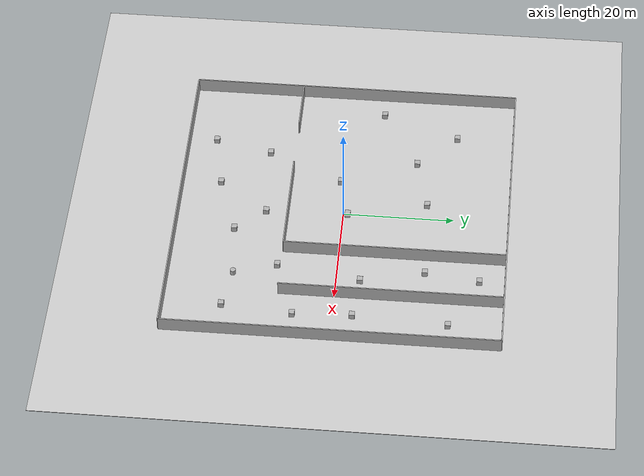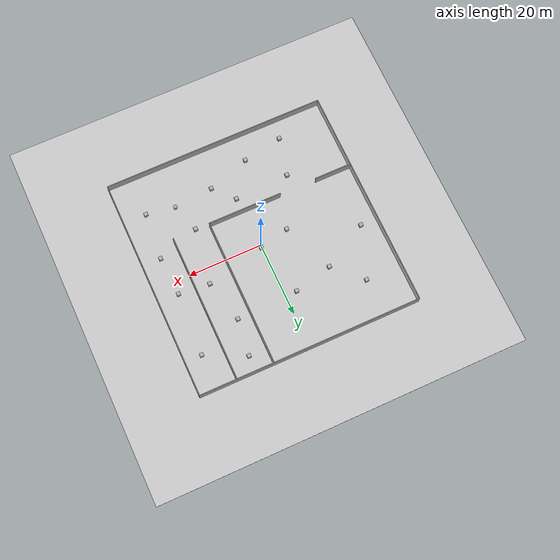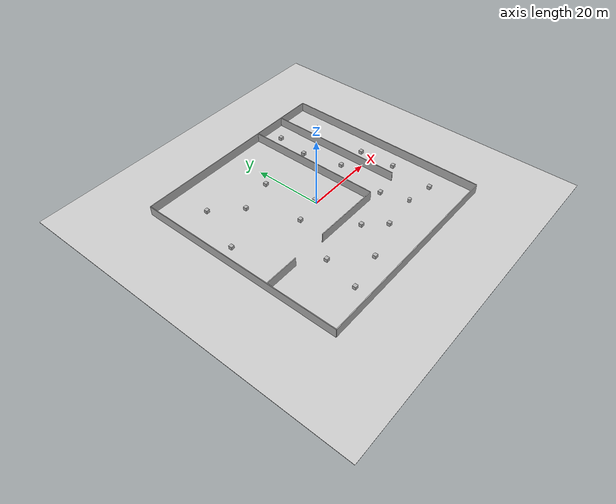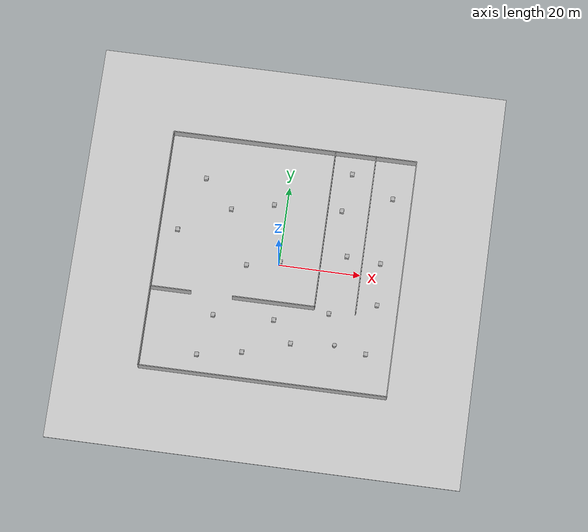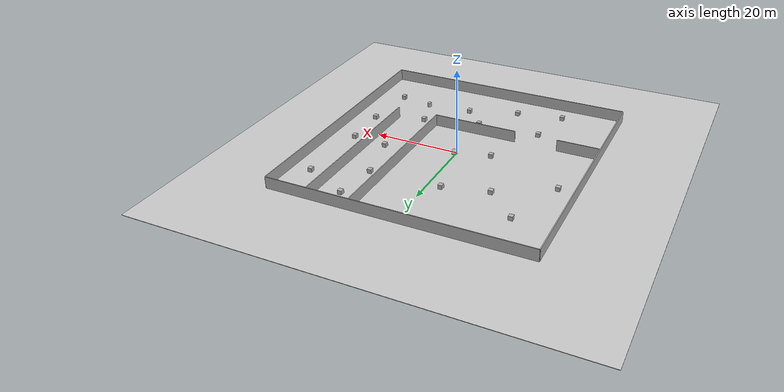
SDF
<sdf version='1.9'>
  <world name='nubot_world'>
    <physics name='1ms' type='ignored'>
      <max_step_size>0.001</max_step_size>
      <real_time_factor>1</real_time_factor>
      <real_time_update_rate>1000</real_time_update_rate>
    </physics>
    <plugin name='ignition::gazebo::systems::Physics' filename='libignition-gazebo-physics-system.so'/>
    <plugin name='ignition::gazebo::systems::Sensors' filename='libignition-gazebo-sensors-system.so'>
      <render_engine>ogre2</render_engine>
    </plugin>
    <plugin name='ignition::gazebo::systems::SceneBroadcaster' filename='libignition-gazebo-scene-broadcaster-system.so'/>
    <plugin name='ignition::gazebo::systems::UserCommands' filename='ignition-gazebo-user-commands-system'/>
    <gravity>0 0 -9.8</gravity>
    <magnetic_field>6e-06 2.3e-05 -4.2e-05</magnetic_field>
    <atmosphere type='adiabatic'/>
    <scene>
      <ambient>0.4 0.4 0.4 1</ambient>
      <background>0.7 0.7 0.7 1</background>
      <shadows>true</shadows>
    </scene>
    <model name='ground_plane'>
      <static>true</static>
      <link name='link'>
        <collision name='collision'>
          <geometry>
            <box>
              <size>100 100 0.1</size>
            </box>
          </geometry>
          <surface>
            <friction>
              <ode/>
            </friction>
            <bounce/>
            <contact/>
          </surface>
        </collision>
        <visual name='visual'>
          <geometry>
            <box>
              <size>100 100 0.1</size>
            </box>
          </geometry>
          <material>
            <ambient>0.8 0.8 0.8 1</ambient>
            <diffuse>0.8 0.8 0.8 1</diffuse>
            <specular>0.8 0.8 0.8 1</specular>
          </material>
        </visual>
        <pose>0 0 0 0 -0 0</pose>
        <inertial>
          <pose>0 0 0 0 -0 0</pose>
          <mass>1</mass>
          <inertia>
            <ixx>1</ixx>
            <ixy>0</ixy>
            <ixz>0</ixz>
            <iyy>1</iyy>
            <iyz>0</iyz>
            <izz>1</izz>
          </inertia>
        </inertial>
        <enable_wind>false</enable_wind>
      </link>
      <pose>0 0 0 0 -0 0</pose>
      <self_collide>false</self_collide>
    </model>
    <model name='outsideS'>
      <pose>30 0 1.4 0 -0 0</pose>
      <link name='box_link'>
        <collision name='box_collision'>
          <geometry>
            <box>
              <size>0.2 60 2.8</size>
            </box>
          </geometry>
          <surface>
            <friction>
              <ode/>
            </friction>
            <bounce/>
            <contact/>
          </surface>
        </collision>
        <visual name='box_visual'>
          <geometry>
            <box>
              <size>0.2 60 2.8</size>
            </box>
          </geometry>
          <material>
            <ambient>0.3 0.3 0.3 1</ambient>
            <diffuse>0.7 0.7 0.7 1</diffuse>
            <specular>1 1 1 1</specular>
          </material>
        </visual>
        <pose>0 0 0 0 -0 0</pose>
        <enable_wind>false</enable_wind>
        <inertial>
          <pose>0 0 0 0 -0 0</pose>
          <mass>1</mass>
          <inertia>
            <ixx>1</ixx>
            <ixy>0</ixy>
            <ixz>0</ixz>
            <iyy>1</iyy>
            <iyz>0</iyz>
            <izz>1</izz>
          </inertia>
        </inertial>
      </link>
      <static>true</static>
      <self_collide>false</self_collide>
    </model>
    <model name='insideS'>
      <pose>20 10 1.4 0 -0 0</pose>
      <link name='box_link'>
        <collision name='box_collision'>
          <geometry>
            <box>
              <size>0.2 40 2.8</size>
            </box>
          </geometry>
          <surface>
            <friction>
              <ode/>
            </friction>
            <bounce/>
            <contact/>
          </surface>
        </collision>
        <visual name='box_visual'>
          <geometry>
            <box>
              <size>0.2 40 2.8</size>
            </box>
          </geometry>
          <material>
            <ambient>0.3 0.3 0.3 1</ambient>
            <diffuse>0.7 0.7 0.7 1</diffuse>
            <specular>1 1 1 1</specular>
          </material>
        </visual>
        <pose>0 0 0 0 -0 0</pose>
        <enable_wind>false</enable_wind>
        <inertial>
          <pose>0 0 0 0 -0 0</pose>
          <mass>1</mass>
          <inertia>
            <ixx>1</ixx>
            <ixy>0</ixy>
            <ixz>0</ixz>
            <iyy>1</iyy>
            <iyz>0</iyz>
            <izz>1</izz>
          </inertia>
        </inertial>
      </link>
      <static>true</static>
      <self_collide>false</self_collide>
    </model>
    <model name='insideS1'>
      <pose>10 10 1.4 0 -0 0</pose>
      <link name='box_link'>
        <collision name='box_collision'>
          <geometry>
            <box>
              <size>0.2 40 2.8</size>
            </box>
          </geometry>
          <surface>
            <friction>
              <ode/>
            </friction>
            <bounce/>
            <contact/>
          </surface>
        </collision>
        <visual name='box_visual'>
          <geometry>
            <box>
              <size>0.2 40 2.8</size>
            </box>
          </geometry>
          <material>
            <ambient>0.3 0.3 0.3 1</ambient>
            <diffuse>0.7 0.7 0.7 1</diffuse>
            <specular>1 1 1 1</specular>
          </material>
        </visual>
        <pose>0 0 0 0 -0 0</pose>
        <enable_wind>false</enable_wind>
        <inertial>
          <pose>0 0 0 0 -0 0</pose>
          <mass>1</mass>
          <inertia>
            <ixx>1</ixx>
            <ixy>0</ixy>
            <ixz>0</ixz>
            <iyy>1</iyy>
            <iyz>0</iyz>
            <izz>1</izz>
          </inertia>
        </inertial>
      </link>
      <static>true</static>
      <self_collide>false</self_collide>
    </model>
    <model name='outsideN'>
      <pose>-30 0 1.4 0 -0 0</pose>
      <link name='box_link'>
        <collision name='box_collision'>
          <geometry>
            <box>
              <size>0.2 60 2.8</size>
            </box>
          </geometry>
          <surface>
            <friction>
              <ode/>
            </friction>
            <bounce/>
            <contact/>
          </surface>
        </collision>
        <visual name='box_visual'>
          <geometry>
            <box>
              <size>0.2 60 2.8</size>
            </box>
          </geometry>
          <material>
            <ambient>0.3 0.3 0.3 1</ambient>
            <diffuse>0.7 0.7 0.7 1</diffuse>
            <specular>1 1 1 1</specular>
          </material>
        </visual>
        <pose>0 0 0 0 -0 0</pose>
        <enable_wind>false</enable_wind>
        <inertial>
          <pose>0 0 0 0 -0 0</pose>
          <mass>1</mass>
          <inertia>
            <ixx>1</ixx>
            <ixy>0</ixy>
            <ixz>0</ixz>
            <iyy>1</iyy>
            <iyz>0</iyz>
            <izz>1</izz>
          </inertia>
        </inertial>
      </link>
      <static>true</static>
      <self_collide>false</self_collide>
    </model>
    <model name='outsideE'>
      <pose>0 -30 1.4 0 -0 0</pose>
      <link name='box_link'>
        <collision name='box_collision'>
          <geometry>
            <box>
              <size>60 0.2 2.8</size>
            </box>
          </geometry>
          <surface>
            <friction>
              <ode/>
            </friction>
            <bounce/>
            <contact/>
          </surface>
        </collision>
        <visual name='box_visual'>
          <geometry>
            <box>
              <size>60 0.2 2.8</size>
            </box>
          </geometry>
          <material>
            <ambient>0.3 0.3 0.3 1</ambient>
            <diffuse>0.7 0.7 0.7 1</diffuse>
            <specular>1 1 1 1</specular>
          </material>
        </visual>
        <pose>0 0 0 0 -0 0</pose>
        <enable_wind>false</enable_wind>
        <inertial>
          <pose>0 0 0 0 -0 0</pose>
          <mass>1</mass>
          <inertia>
            <ixx>1</ixx>
            <ixy>0</ixy>
            <ixz>0</ixz>
            <iyy>1</iyy>
            <iyz>0</iyz>
            <izz>1</izz>
          </inertia>
        </inertial>
      </link>
      <static>true</static>
      <self_collide>false</self_collide>
    </model>
    <model name='vwall'>
      <pose>0 -10 1.4 0 -0 0</pose>
      <link name='box_link'>
        <collision name='box_collision'>
          <geometry>
            <box>
              <size>20 0.2 2.8</size>
            </box>
          </geometry>
          <surface>
            <friction>
              <ode/>
            </friction>
            <bounce/>
            <contact/>
          </surface>
        </collision>
        <visual name='box_visual'>
          <geometry>
            <box>
              <size>20 0.2 2.8</size>
            </box>
          </geometry>
          <material>
            <ambient>0.3 0.3 0.3 1</ambient>
            <diffuse>0.7 0.7 0.7 1</diffuse>
            <specular>1 1 1 1</specular>
          </material>
        </visual>
        <pose>0 0 0 0 -0 0</pose>
        <enable_wind>false</enable_wind>
        <inertial>
          <pose>0 0 0 0 -0 0</pose>
          <mass>1</mass>
          <inertia>
            <ixx>1</ixx>
            <ixy>0</ixy>
            <ixz>0</ixz>
            <iyy>1</iyy>
            <iyz>0</iyz>
            <izz>1</izz>
          </inertia>
        </inertial>
      </link>
      <static>true</static>
      <self_collide>false</self_collide>
    </model>
    <model name='vwall1'>
      <pose>-25 -10 1.4 0 -0 0</pose>
      <link name='box_link'>
        <collision name='box_collision'>
          <geometry>
            <box>
              <size>10 0.2 2.8</size>
            </box>
          </geometry>
          <surface>
            <friction>
              <ode/>
            </friction>
            <bounce/>
            <contact/>
          </surface>
        </collision>
        <visual name='box_visual'>
          <geometry>
            <box>
              <size>10 0.2 2.8</size>
            </box>
          </geometry>
          <material>
            <ambient>0.3 0.3 0.3 1</ambient>
            <diffuse>0.7 0.7 0.7 1</diffuse>
            <specular>1 1 1 1</specular>
          </material>
        </visual>
        <pose>0 0 0 0 -0 0</pose>
        <enable_wind>false</enable_wind>
        <inertial>
          <pose>0 0 0 0 -0 0</pose>
          <mass>1</mass>
          <inertia>
            <ixx>1</ixx>
            <ixy>0</ixy>
            <ixz>0</ixz>
            <iyy>1</iyy>
            <iyz>0</iyz>
            <izz>1</izz>
          </inertia>
        </inertial>
      </link>
      <static>true</static>
      <self_collide>false</self_collide>
    </model>
    <model name='outsideW'>
      <pose>0 30 1.4 0 -0 0</pose>
      <link name='box_link'>
        <collision name='box_collision'>
          <geometry>
            <box>
              <size>60 0.2 2.8</size>
            </box>
          </geometry>
          <surface>
            <friction>
              <ode/>
            </friction>
            <bounce/>
            <contact/>
          </surface>
        </collision>
        <visual name='box_visual'>
          <geometry>
            <box>
              <size>60 0.2 2.8</size>
            </box>
          </geometry>
          <material>
            <ambient>0.3 0.3 0.3 1</ambient>
            <diffuse>0.7 0.7 0.7 1</diffuse>
            <specular>1 1 1 1</specular>
          </material>
        </visual>
        <pose>0 0 0 0 -0 0</pose>
        <enable_wind>false</enable_wind>
        <inertial>
          <pose>0 0 0 0 -0 0</pose>
          <mass>1</mass>
          <inertia>
            <ixx>1</ixx>
            <ixy>0</ixy>
            <ixz>0</ixz>
            <iyy>1</iyy>
            <iyz>0</iyz>
            <izz>1</izz>
          </inertia>
        </inertial>
      </link>
      <static>true</static>
      <self_collide>false</self_collide>
    </model>

    <model name='box'>
      <pose>16.1294 4.27442 0.549999 -0 0 -0</pose>
      <link name='box_link'>
        <inertial>
          <inertia>
            <ixx>0.16666</ixx>
            <ixy>0</ixy>
            <ixz>0</ixz>
            <iyy>0.16666</iyy>
            <iyz>0</iyz>
            <izz>0.16666</izz>
          </inertia>
          <mass>1</mass>
          <pose>0 0 0 0 -0 0</pose>
        </inertial>
        <collision name='box_collision'>
          <geometry>
            <box>
              <size>1 1 1</size>
            </box>
          </geometry>
          <surface>
            <friction>
              <ode/>
            </friction>
            <bounce/>
            <contact/>
          </surface>
        </collision>
        <visual name='box_visual'>
          <geometry>
            <box>
              <size>1 1 1</size>
            </box>
          </geometry>
          <material>
            <ambient>0.3 0.3 0.3 1</ambient>
            <diffuse>0.7 0.7 0.7 1</diffuse>
            <specular>1 1 1 1</specular>
          </material>
        </visual>
        <pose>0 0 0 0 -0 0</pose>
        <enable_wind>false</enable_wind>
      </link>
      <static>false</static>
      <self_collide>false</self_collide>
    </model>
    <model name='box_0'>
      <pose>13.4185 15.6507 0.549999 0 0 -0</pose>
      <link name='box_link'>
        <inertial>
          <inertia>
            <ixx>0.16666</ixx>
            <ixy>0</ixy>
            <ixz>0</ixz>
            <iyy>0.16666</iyy>
            <iyz>0</iyz>
            <izz>0.16666</izz>
          </inertia>
          <mass>1</mass>
          <pose>0 0 0 0 -0 0</pose>
        </inertial>
        <collision name='box_collision'>
          <geometry>
            <box>
              <size>1 1 1</size>
            </box>
          </geometry>
          <surface>
            <friction>
              <ode/>
            </friction>
            <bounce/>
            <contact/>
          </surface>
        </collision>
        <visual name='box_visual'>
          <geometry>
            <box>
              <size>1 1 1</size>
            </box>
          </geometry>
          <material>
            <ambient>0.3 0.3 0.3 1</ambient>
            <diffuse>0.7 0.7 0.7 1</diffuse>
            <specular>1 1 1 1</specular>
          </material>
        </visual>
        <pose>0 0 0 0 -0 0</pose>
        <enable_wind>false</enable_wind>
      </link>
      <static>false</static>
      <self_collide>false</self_collide>
    </model>
    <model name='box_1'>
      <pose>13.6292 -10.7153 0.549999 -0 0 -0</pose>
      <link name='box_link'>
        <inertial>
          <inertia>
            <ixx>0.16666</ixx>
            <ixy>0</ixy>
            <ixz>0</ixz>
            <iyy>0.16666</iyy>
            <iyz>0</iyz>
            <izz>0.16666</izz>
          </inertia>
          <mass>1</mass>
          <pose>0 0 0 0 -0 0</pose>
        </inertial>
        <collision name='box_collision'>
          <geometry>
            <box>
              <size>1 1 1</size>
            </box>
          </geometry>
          <surface>
            <friction>
              <ode/>
            </friction>
            <bounce/>
            <contact/>
          </surface>
        </collision>
        <visual name='box_visual'>
          <geometry>
            <box>
              <size>1 1 1</size>
            </box>
          </geometry>
          <material>
            <ambient>0.3 0.3 0.3 1</ambient>
            <diffuse>0.7 0.7 0.7 1</diffuse>
            <specular>1 1 1 1</specular>
          </material>
        </visual>
        <pose>0 0 0 0 -0 0</pose>
        <enable_wind>false</enable_wind>
      </link>
      <static>false</static>
      <self_collide>false</self_collide>
    </model>
    <model name='box_2'>
      <pose>24.4339 3.5161 0.549999 -0 0 -0</pose>
      <link name='box_link'>
        <inertial>
          <inertia>
            <ixx>0.16666</ixx>
            <ixy>0</ixy>
            <ixz>0</ixz>
            <iyy>0.16666</iyy>
            <iyz>0</iyz>
            <izz>0.16666</izz>
          </inertia>
          <mass>1</mass>
          <pose>0 0 0 0 -0 0</pose>
        </inertial>
        <collision name='box_collision'>
          <geometry>
            <box>
              <size>1 1 1</size>
            </box>
          </geometry>
          <surface>
            <friction>
              <ode/>
            </friction>
            <bounce/>
            <contact/>
          </surface>
        </collision>
        <visual name='box_visual'>
          <geometry>
            <box>
              <size>1 1 1</size>
            </box>
          </geometry>
          <material>
            <ambient>0.3 0.3 0.3 1</ambient>
            <diffuse>0.7 0.7 0.7 1</diffuse>
            <specular>1 1 1 1</specular>
          </material>
        </visual>
        <pose>0 0 0 0 -0 0</pose>
        <enable_wind>false</enable_wind>
      </link>
      <static>false</static>
      <self_collide>false</self_collide>
    </model>
    <model name='box_3'>
      <pose>23.7091 -19.6584 0.549999 0 0 -0</pose>
      <link name='box_link'>
        <inertial>
          <inertia>
            <ixx>0.16666</ixx>
            <ixy>0</ixy>
            <ixz>0</ixz>
            <iyy>0.16666</iyy>
            <iyz>0</iyz>
            <izz>0.16666</izz>
          </inertia>
          <mass>1</mass>
          <pose>0 0 0 0 -0 0</pose>
        </inertial>
        <collision name='box_collision'>
          <geometry>
            <box>
              <size>1 1 1</size>
            </box>
          </geometry>
          <surface>
            <friction>
              <ode/>
            </friction>
            <bounce/>
            <contact/>
          </surface>
        </collision>
        <visual name='box_visual'>
          <geometry>
            <box>
              <size>1 1 1</size>
            </box>
          </geometry>
          <material>
            <ambient>0.3 0.3 0.3 1</ambient>
            <diffuse>0.7 0.7 0.7 1</diffuse>
            <specular>1 1 1 1</specular>
          </material>
        </visual>
        <pose>0 0 0 0 -0 0</pose>
        <enable_wind>false</enable_wind>
      </link>
      <static>false</static>
      <self_collide>false</self_collide>
    </model>
    <model name='box_4'>
      <pose>5.43309 -19.3546 0.549999 -0 0 -0</pose>
      <link name='box_link'>
        <inertial>
          <inertia>
            <ixx>0.16666</ixx>
            <ixy>0</ixy>
            <ixz>0</ixz>
            <iyy>0.16666</iyy>
            <iyz>0</iyz>
            <izz>0.16666</izz>
          </inertia>
          <mass>1</mass>
          <pose>0 0 0 0 -0 0</pose>
        </inertial>
        <collision name='box_collision'>
          <geometry>
            <box>
              <size>1 1 1</size>
            </box>
          </geometry>
          <surface>
            <friction>
              <ode/>
            </friction>
            <bounce/>
            <contact/>
          </surface>
        </collision>
        <visual name='box_visual'>
          <geometry>
            <box>
              <size>1 1 1</size>
            </box>
          </geometry>
          <material>
            <ambient>0.3 0.3 0.3 1</ambient>
            <diffuse>0.7 0.7 0.7 1</diffuse>
            <specular>1 1 1 1</specular>
          </material>
        </visual>
        <pose>0 0 0 0 -0 0</pose>
        <enable_wind>false</enable_wind>
      </link>
      <static>false</static>
      <self_collide>false</self_collide>
    </model>
    <model name='cylinder'>
      <pose>15.9903 -18.4057 0.548207 0 -0 0</pose>
      <link name='cylinder_link'>
        <inertial>
          <inertia>
            <ixx>0.14580000000000001</ixx>
            <ixy>0</ixy>
            <ixz>0</ixz>
            <iyy>0.14580000000000001</iyy>
            <iyz>0</iyz>
            <izz>0.125</izz>
          </inertia>
          <mass>1</mass>
          <pose>0 0 0 0 -0 0</pose>
        </inertial>
        <collision name='cylinder_collision'>
          <geometry>
            <cylinder>
              <radius>0.5</radius>
              <length>1</length>
            </cylinder>
          </geometry>
          <surface>
            <friction>
              <ode/>
            </friction>
            <bounce/>
            <contact/>
          </surface>
        </collision>
        <visual name='cylinder_visual'>
          <geometry>
            <cylinder>
              <radius>0.5</radius>
              <length>1</length>
            </cylinder>
          </geometry>
          <material>
            <ambient>0.3 0.3 0.3 1</ambient>
            <diffuse>0.7 0.7 0.7 1</diffuse>
            <specular>1 1 1 1</specular>
          </material>
        </visual>
        <pose>0 0 0 0 -0 0</pose>
        <enable_wind>false</enable_wind>
      </link>
      <static>false</static>
      <self_collide>false</self_collide>
    </model>
    <model name='box_5'>
      <pose>-3.11042 15.0437 0.546188 -0 0 -0</pose>
      <link name='box_link'>
        <inertial>
          <inertia>
            <ixx>0.16666</ixx>
            <ixy>0</ixy>
            <ixz>0</ixz>
            <iyy>0.16666</iyy>
            <iyz>0</iyz>
            <izz>0.16666</izz>
          </inertia>
          <mass>1</mass>
          <pose>0 0 0 0 -0 0</pose>
        </inertial>
        <collision name='box_collision'>
          <geometry>
            <box>
              <size>1 1 1</size>
            </box>
          </geometry>
          <surface>
            <friction>
              <ode/>
            </friction>
            <bounce/>
            <contact/>
          </surface>
        </collision>
        <visual name='box_visual'>
          <geometry>
            <box>
              <size>1 1 1</size>
            </box>
          </geometry>
          <material>
            <ambient>0.3 0.3 0.3 1</ambient>
            <diffuse>0.7 0.7 0.7 1</diffuse>
            <specular>1 1 1 1</specular>
          </material>
        </visual>
        <pose>0 0 0 0 -0 0</pose>
        <enable_wind>false</enable_wind>
      </link>
      <static>false</static>
      <self_collide>false</self_collide>
    </model>
    <model name='box_6'>
      <pose>-7.75598 -1.0978 0.544051 0 0 -0</pose>
      <link name='box_link'>
        <inertial>
          <inertia>
            <ixx>0.16666</ixx>
            <ixy>0</ixy>
            <ixz>0</ixz>
            <iyy>0.16666</iyy>
            <iyz>0</iyz>
            <izz>0.16666</izz>
          </inertia>
          <mass>1</mass>
          <pose>0 0 0 0 -0 0</pose>
        </inertial>
        <collision name='box_collision'>
          <geometry>
            <box>
              <size>1 1 1</size>
            </box>
          </geometry>
          <surface>
            <friction>
              <ode/>
            </friction>
            <bounce/>
            <contact/>
          </surface>
        </collision>
        <visual name='box_visual'>
          <geometry>
            <box>
              <size>1 1 1</size>
            </box>
          </geometry>
          <material>
            <ambient>0.3 0.3 0.3 1</ambient>
            <diffuse>0.7 0.7 0.7 1</diffuse>
            <specular>1 1 1 1</specular>
          </material>
        </visual>
        <pose>0 0 0 0 -0 0</pose>
        <enable_wind>false</enable_wind>
      </link>
      <static>false</static>
      <self_collide>false</self_collide>
    </model>
    <model name='box_7'>
      <pose>-13.3882 12.5866 0.539365 0 0 -0</pose>
      <link name='box_link'>
        <inertial>
          <inertia>
            <ixx>0.16666</ixx>
            <ixy>0</ixy>
            <ixz>0</ixz>
            <iyy>0.16666</iyy>
            <iyz>0</iyz>
            <izz>0.16666</izz>
          </inertia>
          <mass>1</mass>
          <pose>0 0 0 0 -0 0</pose>
        </inertial>
        <collision name='box_collision'>
          <geometry>
            <box>
              <size>1 1 1</size>
            </box>
          </geometry>
          <surface>
            <friction>
              <ode/>
            </friction>
            <bounce/>
            <contact/>
          </surface>
        </collision>
        <visual name='box_visual'>
          <geometry>
            <box>
              <size>1 1 1</size>
            </box>
          </geometry>
          <material>
            <ambient>0.3 0.3 0.3 1</ambient>
            <diffuse>0.7 0.7 0.7 1</diffuse>
            <specular>1 1 1 1</specular>
          </material>
        </visual>
        <pose>0 0 0 0 -0 0</pose>
        <enable_wind>false</enable_wind>
      </link>
      <static>false</static>
      <self_collide>false</self_collide>
    </model>
    <model name='box_8'>
      <pose>0.666135 -14.0272 0.537339 0 0 -0</pose>
      <link name='box_link'>
        <inertial>
          <inertia>
            <ixx>0.16666</ixx>
            <ixy>0</ixy>
            <ixz>0</ixz>
            <iyy>0.16666</iyy>
            <iyz>0</iyz>
            <izz>0.16666</izz>
          </inertia>
          <mass>1</mass>
          <pose>0 0 0 0 -0 0</pose>
        </inertial>
        <collision name='box_collision'>
          <geometry>
            <box>
              <size>1 1 1</size>
            </box>
          </geometry>
          <surface>
            <friction>
              <ode/>
            </friction>
            <bounce/>
            <contact/>
          </surface>
        </collision>
        <visual name='box_visual'>
          <geometry>
            <box>
              <size>1 1 1</size>
            </box>
          </geometry>
          <material>
            <ambient>0.3 0.3 0.3 1</ambient>
            <diffuse>0.7 0.7 0.7 1</diffuse>
            <specular>1 1 1 1</specular>
          </material>
        </visual>
        <pose>0 0 0 0 -0 0</pose>
        <enable_wind>false</enable_wind>
      </link>
      <static>false</static>
      <self_collide>false</self_collide>
    </model>
    <model name='box_9'>
      <pose>-14.0506 -14.6807 0.535296 -0 0 -0</pose>
      <link name='box_link'>
        <inertial>
          <inertia>
            <ixx>0.16666</ixx>
            <ixy>0</ixy>
            <ixz>0</ixz>
            <iyy>0.16666</iyy>
            <iyz>0</iyz>
            <izz>0.16666</izz>
          </inertia>
          <mass>1</mass>
          <pose>0 0 0 0 -0 0</pose>
        </inertial>
        <collision name='box_collision'>
          <geometry>
            <box>
              <size>1 1 1</size>
            </box>
          </geometry>
          <surface>
            <friction>
              <ode/>
            </friction>
            <bounce/>
            <contact/>
          </surface>
        </collision>
        <visual name='box_visual'>
          <geometry>
            <box>
              <size>1 1 1</size>
            </box>
          </geometry>
          <material>
            <ambient>0.3 0.3 0.3 1</ambient>
            <diffuse>0.7 0.7 0.7 1</diffuse>
            <specular>1 1 1 1</specular>
          </material>
        </visual>
        <pose>0 0 0 0 -0 0</pose>
        <enable_wind>false</enable_wind>
      </link>
      <static>false</static>
      <self_collide>false</self_collide>
    </model>
    <model name='box_10'>
      <pose>-5.87708 -23.0206 0.532984 0 0 -0</pose>
      <link name='box_link'>
        <inertial>
          <inertia>
            <ixx>0.16666</ixx>
            <ixy>0</ixy>
            <ixz>0</ixz>
            <iyy>0.16666</iyy>
            <iyz>0</iyz>
            <izz>0.16666</izz>
          </inertia>
          <mass>1</mass>
          <pose>0 0 0 0 -0 0</pose>
        </inertial>
        <collision name='box_collision'>
          <geometry>
            <box>
              <size>1 1 1</size>
            </box>
          </geometry>
          <surface>
            <friction>
              <ode/>
            </friction>
            <bounce/>
            <contact/>
          </surface>
        </collision>
        <visual name='box_visual'>
          <geometry>
            <box>
              <size>1 1 1</size>
            </box>
          </geometry>
          <material>
            <ambient>0.3 0.3 0.3 1</ambient>
            <diffuse>0.7 0.7 0.7 1</diffuse>
            <specular>1 1 1 1</specular>
          </material>
        </visual>
        <pose>0 0 0 0 -0 0</pose>
        <enable_wind>false</enable_wind>
      </link>
      <static>false</static>
      <self_collide>false</self_collide>
    </model>
    <model name='box_11'>
      <pose>0.267087 0.783296 0.529338 0 -0 -0</pose>
      <link name='box_link'>
        <inertial>
          <inertia>
            <ixx>0.16666</ixx>
            <ixy>0</ixy>
            <ixz>0</ixz>
            <iyy>0.16666</iyy>
            <iyz>0</iyz>
            <izz>0.16666</izz>
          </inertia>
          <mass>1</mass>
          <pose>0 0 0 0 -0 0</pose>
        </inertial>
        <collision name='box_collision'>
          <geometry>
            <box>
              <size>1 1 1</size>
            </box>
          </geometry>
          <surface>
            <friction>
              <ode/>
            </friction>
            <bounce/>
            <contact/>
          </surface>
        </collision>
        <visual name='box_visual'>
          <geometry>
            <box>
              <size>1 1 1</size>
            </box>
          </geometry>
          <material>
            <ambient>0.3 0.3 0.3 1</ambient>
            <diffuse>0.7 0.7 0.7 1</diffuse>
            <specular>1 1 1 1</specular>
          </material>
        </visual>
        <pose>0 0 0 0 -0 0</pose>
        <enable_wind>false</enable_wind>
      </link>
      <static>false</static>
      <self_collide>false</self_collide>
    </model>
    <model name='box_12'>
      <pose>-25.6157 5.73176 0.527452 0 0 -0</pose>
      <link name='box_link'>
        <inertial>
          <inertia>
            <ixx>0.16666</ixx>
            <ixy>0</ixy>
            <ixz>0</ixz>
            <iyy>0.16666</iyy>
            <iyz>0</iyz>
            <izz>0.16666</izz>
          </inertia>
          <mass>1</mass>
          <pose>0 0 0 0 -0 0</pose>
        </inertial>
        <collision name='box_collision'>
          <geometry>
            <box>
              <size>1 1 1</size>
            </box>
          </geometry>
          <surface>
            <friction>
              <ode/>
            </friction>
            <bounce/>
            <contact/>
          </surface>
        </collision>
        <visual name='box_visual'>
          <geometry>
            <box>
              <size>1 1 1</size>
            </box>
          </geometry>
          <material>
            <ambient>0.3 0.3 0.3 1</ambient>
            <diffuse>0.7 0.7 0.7 1</diffuse>
            <specular>1 1 1 1</specular>
          </material>
        </visual>
        <pose>0 0 0 0 -0 0</pose>
        <enable_wind>false</enable_wind>
      </link>
      <static>false</static>
      <self_collide>false</self_collide>
    </model>
    <model name='box_13'>
      <pose>-20.5235 19.6358 0.525606 0 -0 -0</pose>
      <link name='box_link'>
        <inertial>
          <inertia>
            <ixx>0.16666</ixx>
            <ixy>0</ixy>
            <ixz>0</ixz>
            <iyy>0.16666</iyy>
            <iyz>0</iyz>
            <izz>0.16666</izz>
          </inertia>
          <mass>1</mass>
          <pose>0 0 0 0 -0 0</pose>
        </inertial>
        <collision name='box_collision'>
          <geometry>
            <box>
              <size>1 1 1</size>
            </box>
          </geometry>
          <surface>
            <friction>
              <ode/>
            </friction>
            <bounce/>
            <contact/>
          </surface>
        </collision>
        <visual name='box_visual'>
          <geometry>
            <box>
              <size>1 1 1</size>
            </box>
          </geometry>
          <material>
            <ambient>0.3 0.3 0.3 1</ambient>
            <diffuse>0.7 0.7 0.7 1</diffuse>
            <specular>1 1 1 1</specular>
          </material>
        </visual>
        <pose>0 0 0 0 -0 0</pose>
        <enable_wind>false</enable_wind>
      </link>
      <static>false</static>
      <self_collide>false</self_collide>
    </model>
    <model name='box_14'>
      <pose>-16.5647 -25.014 0.523007 0 -0 -0</pose>
      <link name='box_link'>
        <inertial>
          <inertia>
            <ixx>0.16666</ixx>
            <ixy>0</ixy>
            <ixz>0</ixz>
            <iyy>0.16666</iyy>
            <iyz>0</iyz>
            <izz>0.16666</izz>
          </inertia>
          <mass>1</mass>
          <pose>0 0 0 0 -0 0</pose>
        </inertial>
        <collision name='box_collision'>
          <geometry>
            <box>
              <size>1 1 1</size>
            </box>
          </geometry>
          <surface>
            <friction>
              <ode/>
            </friction>
            <bounce/>
            <contact/>
          </surface>
        </collision>
        <visual name='box_visual'>
          <geometry>
            <box>
              <size>1 1 1</size>
            </box>
          </geometry>
          <material>
            <ambient>0.3 0.3 0.3 1</ambient>
            <diffuse>0.7 0.7 0.7 1</diffuse>
            <specular>1 1 1 1</specular>
          </material>
        </visual>
        <pose>0 0 0 0 -0 0</pose>
        <enable_wind>false</enable_wind>
      </link>
      <static>false</static>
      <self_collide>false</self_collide>
    </model>
    <model name='box_15'>
      <pose>14.7481 25.4289 0.519753 0 -0 -0</pose>
      <link name='box_link'>
        <inertial>
          <inertia>
            <ixx>0.16666</ixx>
            <ixy>0</ixy>
            <ixz>0</ixz>
            <iyy>0.16666</iyy>
            <iyz>0</iyz>
            <izz>0.16666</izz>
          </inertia>
          <mass>1</mass>
          <pose>0 0 0 0 -0 0</pose>
        </inertial>
        <collision name='box_collision'>
          <geometry>
            <box>
              <size>1 1 1</size>
            </box>
          </geometry>
          <surface>
            <friction>
              <ode/>
            </friction>
            <bounce/>
            <contact/>
          </surface>
        </collision>
        <visual name='box_visual'>
          <geometry>
            <box>
              <size>1 1 1</size>
            </box>
          </geometry>
          <material>
            <ambient>0.3 0.3 0.3 1</ambient>
            <diffuse>0.7 0.7 0.7 1</diffuse>
            <specular>1 1 1 1</specular>
          </material>
        </visual>
        <pose>0 0 0 0 -0 0</pose>
        <enable_wind>false</enable_wind>
      </link>
      <static>false</static>
      <self_collide>false</self_collide>
    </model>
    <model name='box_16'>
      <pose>24.8844 -7.04835 0.515557 0 -0 0</pose>
      <link name='box_link'>
        <inertial>
          <inertia>
            <ixx>0.16666</ixx>
            <ixy>0</ixy>
            <ixz>0</ixz>
            <iyy>0.16666</iyy>
            <iyz>0</iyz>
            <izz>0.16666</izz>
          </inertia>
          <mass>1</mass>
          <pose>0 0 0 0 -0 0</pose>
        </inertial>
        <collision name='box_collision'>
          <geometry>
            <box>
              <size>1 1 1</size>
            </box>
          </geometry>
          <surface>
            <friction>
              <ode/>
            </friction>
            <bounce/>
            <contact/>
          </surface>
        </collision>
        <visual name='box_visual'>
          <geometry>
            <box>
              <size>1 1 1</size>
            </box>
          </geometry>
          <material>
            <ambient>0.3 0.3 0.3 1</ambient>
            <diffuse>0.7 0.7 0.7 1</diffuse>
            <specular>1 1 1 1</specular>
          </material>
        </visual>
        <pose>0 0 0 0 -0 0</pose>
        <enable_wind>false</enable_wind>
      </link>
      <static>false</static>
      <self_collide>false</self_collide>
    </model>
    <model name='box_17'>
      <pose>25.3566 20.3963 0.5121 0 -0 -0</pose>
      <link name='box_link'>
        <inertial>
          <inertia>
            <ixx>0.16666</ixx>
            <ixy>0</ixy>
            <ixz>0</ixz>
            <iyy>0.16666</iyy>
            <iyz>0</iyz>
            <izz>0.16666</izz>
          </inertia>
          <mass>1</mass>
          <pose>0 0 0 0 -0 0</pose>
        </inertial>
        <collision name='box_collision'>
          <geometry>
            <box>
              <size>1 1 1</size>
            </box>
          </geometry>
          <surface>
            <friction>
              <ode/>
            </friction>
            <bounce/>
            <contact/>
          </surface>
        </collision>
        <visual name='box_visual'>
          <geometry>
            <box>
              <size>1 1 1</size>
            </box>
          </geometry>
          <material>
            <ambient>0.3 0.3 0.3 1</ambient>
            <diffuse>0.7 0.7 0.7 1</diffuse>
            <specular>1 1 1 1</specular>
          </material>
        </visual>
        <pose>0 0 0 0 -0 0</pose>
        <enable_wind>false</enable_wind>
      </link>
      <static>false</static>
      <self_collide>false</self_collide>
    </model>
    <light name='sun' type='directional'>
      <pose>0 0 10 0 -0 0</pose>
      <cast_shadows>true</cast_shadows>
      <intensity>1</intensity>
      <direction>-0.5 0.1 -0.9</direction>
      <diffuse>0.8 0.8 0.8 1</diffuse>
      <specular>0.2 0.2 0.2 1</specular>
      <attenuation>
        <range>1000</range>
        <linear>0.01</linear>
        <constant>0.90000000000000002</constant>
        <quadratic>0.001</quadratic>
      </attenuation>
      <spot>
        <inner_angle>0</inner_angle>
        <outer_angle>0</outer_angle>
        <falloff>0</falloff>
      </spot>
    </light>
  </world>
</sdf>
